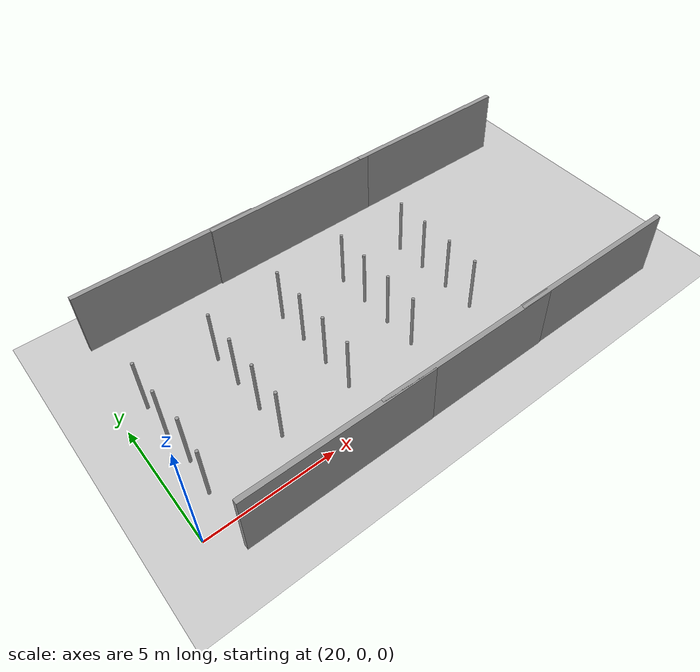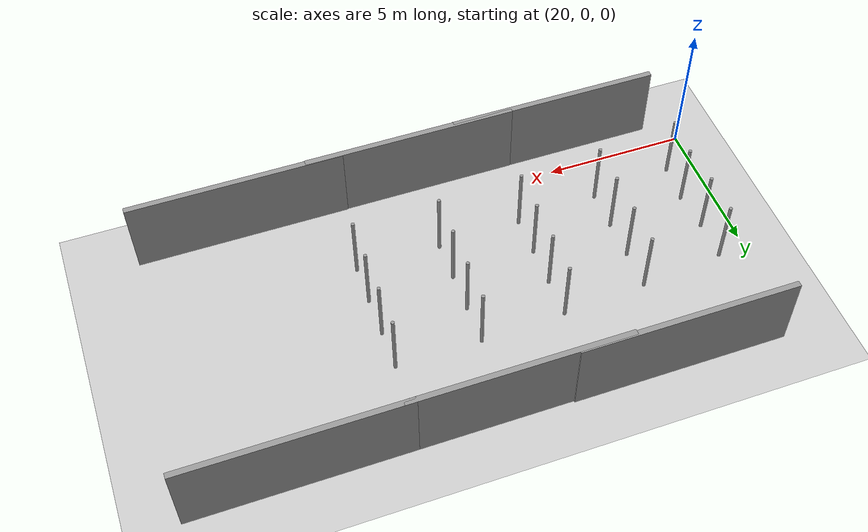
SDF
<sdf version="1.6">
 <world name="default">
  <model name="ground_plane">
   <static>1</static>
   <link name="link">
    <collision name="collision">
     <geometry><plane><normal>0 0 1</normal><size>100 100</size></plane></geometry>
     <surface><friction><ode><mu>100</mu><mu2>50</mu2></ode></friction></surface>
    </collision>
    <visual name="visual">
     <cast_shadows>0</cast_shadows>
     <geometry><plane><normal>0 0 1</normal><size>100 100</size></plane></geometry>
     <material>
      <script><uri>file://media/materials/scripts/gazebo.material</uri><name>Gazebo/Grey</name></script>
     </material>
    </visual>
   </link>
  </model>
  <model name="pole_13">
   <link name="link_0">
    <inertial>
     <mass>0.0364582</mass>
     <inertia>
      <ixx>0.00312124</ixx>
      <ixy>0</ixy>
      <ixz>0</ixz>
      <iyy>0.00312124</iyy>
      <iyz>0</iyz>
      <izz>0.00016615</izz>
     </inertia>
    </inertial>
    <visual name="visual">
     <geometry><cylinder><radius>0.06</radius><length>2.5</length></cylinder></geometry>
     <material>
      <lighting>1</lighting>
      <script><uri>file://media/materials/scripts/gazebo.material</uri><name>Gazebo/Grey</name></script>
      <ambient>0.3 0.3 0.3 1</ambient>
      <diffuse>0.7 0.7 0.7 1</diffuse>
      <specular>0.01 0.01 0.01 1</specular>
      <emissive>0 0 0 1</emissive>
      <shader type="vertex"><normal_map>__default__</normal_map></shader>
     </material>
    </visual>
    <collision name="collision">
     <geometry><cylinder><radius>0.06</radius><length>2.5</length></cylinder></geometry>
     <surface>
      <friction>
       <ode><mu>1</mu><mu2>1</mu2><fdir1>0 0 0</fdir1><slip1>0</slip1><slip2>0</slip2></ode>
       <torsional>
        <coefficient>1</coefficient>
        <patch_radius>0</patch_radius>
        <surface_radius>0</surface_radius>
        <use_patch_radius>1</use_patch_radius>
        <ode><slip>0</slip></ode>
       </torsional>
      </friction>
      <bounce><restitution_coefficient>0</restitution_coefficient><threshold>1e+06</threshold></bounce>
      <contact>
       <collide_without_contact>0</collide_without_contact>
       <collide_without_contact_bitmask>1</collide_without_contact_bitmask>
       <collide_bitmask>1</collide_bitmask>
       <ode>
        <soft_cfm>0</soft_cfm>
        <soft_erp>0.2</soft_erp>
        <kp>1e+13</kp>
        <kd>1</kd>
        <max_vel>0.01</max_vel>
        <min_depth>0</min_depth>
       </ode>
       <bullet>
        <split_impulse>1</split_impulse>
        <split_impulse_penetration_threshold>-0.01</split_impulse_penetration_threshold>
        <soft_cfm>0</soft_cfm>
        <soft_erp>0.2</soft_erp>
        <kp>1e+13</kp>
        <kd>1</kd>
       </bullet>
      </contact>
     </surface>
    </collision>
   </link>
   <static>0</static>
   <pose>21.0002 1.30174 1.25 -1e-06 1e-06 -0.05392</pose>
  </model>
  <model name="pole_16">
   <link name="link_0">
    <inertial>
     <mass>0.0364582</mass>
     <inertia>
      <ixx>0.00312124</ixx>
      <ixy>0</ixy>
      <ixz>0</ixz>
      <iyy>0.00312124</iyy>
      <iyz>0</iyz>
      <izz>0.00016615</izz>
     </inertia>
    </inertial>
    <visual name="visual">
     <geometry><cylinder><radius>0.06</radius><length>2.5</length></cylinder></geometry>
     <material>
      <lighting>1</lighting>
      <script><uri>file://media/materials/scripts/gazebo.material</uri><name>Gazebo/Grey</name></script>
      <ambient>0.3 0.3 0.3 1</ambient>
      <diffuse>0.7 0.7 0.7 1</diffuse>
      <specular>0.01 0.01 0.01 1</specular>
      <emissive>0 0 0 1</emissive>
      <shader type="vertex"><normal_map>__default__</normal_map></shader>
     </material>
    </visual>
    <collision name="collision">
     <geometry><cylinder><radius>0.06</radius><length>2.5</length></cylinder></geometry>
     <surface>
      <friction>
       <ode><mu>1</mu><mu2>1</mu2><fdir1>0 0 0</fdir1><slip1>0</slip1><slip2>0</slip2></ode>
       <torsional>
        <coefficient>1</coefficient>
        <patch_radius>0</patch_radius>
        <surface_radius>0</surface_radius>
        <use_patch_radius>1</use_patch_radius>
        <ode><slip>0</slip></ode>
       </torsional>
      </friction>
      <bounce><restitution_coefficient>0</restitution_coefficient><threshold>1e+06</threshold></bounce>
      <contact>
       <collide_without_contact>0</collide_without_contact>
       <collide_without_contact_bitmask>1</collide_without_contact_bitmask>
       <collide_bitmask>1</collide_bitmask>
       <ode>
        <soft_cfm>0</soft_cfm>
        <soft_erp>0.2</soft_erp>
        <kp>1e+13</kp>
        <kd>1</kd>
        <max_vel>0.01</max_vel>
        <min_depth>0</min_depth>
       </ode>
       <bullet>
        <split_impulse>1</split_impulse>
        <split_impulse_penetration_threshold>-0.01</split_impulse_penetration_threshold>
        <soft_cfm>0</soft_cfm>
        <soft_erp>0.2</soft_erp>
        <kp>1e+13</kp>
        <kd>1</kd>
       </bullet>
      </contact>
     </surface>
    </collision>
   </link>
   <static>0</static>
   <pose>21.1078 2.7014 1.24999 -1e-06 -1e-06 0.018883</pose>
  </model>
  <model name="pole_18">
   <link name="link_0">
    <inertial>
     <mass>0.0364582</mass>
     <inertia>
      <ixx>0.00312124</ixx>
      <ixy>0</ixy>
      <ixz>0</ixz>
      <iyy>0.00312124</iyy>
      <iyz>0</iyz>
      <izz>0.00016615</izz>
     </inertia>
    </inertial>
    <visual name="visual">
     <geometry><cylinder><radius>0.06</radius><length>2.5</length></cylinder></geometry>
     <material>
      <lighting>1</lighting>
      <script><uri>file://media/materials/scripts/gazebo.material</uri><name>Gazebo/Grey</name></script>
      <ambient>0.3 0.3 0.3 1</ambient>
      <diffuse>0.7 0.7 0.7 1</diffuse>
      <specular>0.01 0.01 0.01 1</specular>
      <emissive>0 0 0 1</emissive>
      <shader type="vertex"><normal_map>__default__</normal_map></shader>
     </material>
    </visual>
    <collision name="collision">
     <geometry><cylinder><radius>0.06</radius><length>2.5</length></cylinder></geometry>
     <surface>
      <friction>
       <ode><mu>1</mu><mu2>1</mu2><fdir1>0 0 0</fdir1><slip1>0</slip1><slip2>0</slip2></ode>
       <torsional>
        <coefficient>1</coefficient>
        <patch_radius>0</patch_radius>
        <surface_radius>0</surface_radius>
        <use_patch_radius>1</use_patch_radius>
        <ode><slip>0</slip></ode>
       </torsional>
      </friction>
      <bounce><restitution_coefficient>0</restitution_coefficient><threshold>1e+06</threshold></bounce>
      <contact>
       <collide_without_contact>0</collide_without_contact>
       <collide_without_contact_bitmask>1</collide_without_contact_bitmask>
       <collide_bitmask>1</collide_bitmask>
       <ode>
        <soft_cfm>0</soft_cfm>
        <soft_erp>0.2</soft_erp>
        <kp>1e+13</kp>
        <kd>1</kd>
        <max_vel>0.01</max_vel>
        <min_depth>0</min_depth>
       </ode>
       <bullet>
        <split_impulse>1</split_impulse>
        <split_impulse_penetration_threshold>-0.01</split_impulse_penetration_threshold>
        <soft_cfm>0</soft_cfm>
        <soft_erp>0.2</soft_erp>
        <kp>1e+13</kp>
        <kd>1</kd>
       </bullet>
      </contact>
     </surface>
    </collision>
   </link>
   <static>0</static>
   <pose>27.0002 1.80077 1.25 -1e-06 1e-06 -0.04813</pose>
  </model>
  <model name="pole_19">
   <link name="link_0">
    <inertial>
     <mass>0.0364582</mass>
     <inertia>
      <ixx>0.00312124</ixx>
      <ixy>0</ixy>
      <ixz>0</ixz>
      <iyy>0.00312124</iyy>
      <iyz>0</iyz>
      <izz>0.00016615</izz>
     </inertia>
    </inertial>
    <visual name="visual">
     <geometry><cylinder><radius>0.06</radius><length>2.5</length></cylinder></geometry>
     <material>
      <lighting>1</lighting>
      <script><uri>file://media/materials/scripts/gazebo.material</uri><name>Gazebo/Grey</name></script>
      <ambient>0.3 0.3 0.3 1</ambient>
      <diffuse>0.7 0.7 0.7 1</diffuse>
      <specular>0.01 0.01 0.01 1</specular>
      <emissive>0 0 0 1</emissive>
      <shader type="vertex"><normal_map>__default__</normal_map></shader>
     </material>
    </visual>
    <collision name="collision">
     <geometry><cylinder><radius>0.06</radius><length>2.5</length></cylinder></geometry>
     <surface>
      <friction>
       <ode><mu>1</mu><mu2>1</mu2><fdir1>0 0 0</fdir1><slip1>0</slip1><slip2>0</slip2></ode>
       <torsional>
        <coefficient>1</coefficient>
        <patch_radius>0</patch_radius>
        <surface_radius>0</surface_radius>
        <use_patch_radius>1</use_patch_radius>
        <ode><slip>0</slip></ode>
       </torsional>
      </friction>
      <bounce><restitution_coefficient>0</restitution_coefficient><threshold>1e+06</threshold></bounce>
      <contact>
       <collide_without_contact>0</collide_without_contact>
       <collide_without_contact_bitmask>1</collide_without_contact_bitmask>
       <collide_bitmask>1</collide_bitmask>
       <ode>
        <soft_cfm>0</soft_cfm>
        <soft_erp>0.2</soft_erp>
        <kp>1e+13</kp>
        <kd>1</kd>
        <max_vel>0.01</max_vel>
        <min_depth>0</min_depth>
       </ode>
       <bullet>
        <split_impulse>1</split_impulse>
        <split_impulse_penetration_threshold>-0.01</split_impulse_penetration_threshold>
        <soft_cfm>0</soft_cfm>
        <soft_erp>0.2</soft_erp>
        <kp>1e+13</kp>
        <kd>1</kd>
       </bullet>
      </contact>
     </surface>
    </collision>
   </link>
   <static>0</static>
   <pose>27.0002 3.20072 1.25 0 3e-06 -0.323036</pose>
  </model>
  <model name="pole_21">
   <link name="link_0">
    <inertial>
     <mass>0.0364582</mass>
     <inertia>
      <ixx>0.00312124</ixx>
      <ixy>0</ixy>
      <ixz>0</ixz>
      <iyy>0.00312124</iyy>
      <iyz>0</iyz>
      <izz>0.00016615</izz>
     </inertia>
    </inertial>
    <visual name="visual">
     <geometry><cylinder><radius>0.06</radius><length>2.5</length></cylinder></geometry>
     <material>
      <lighting>1</lighting>
      <script><uri>file://media/materials/scripts/gazebo.material</uri><name>Gazebo/Grey</name></script>
      <ambient>0.3 0.3 0.3 1</ambient>
      <diffuse>0.7 0.7 0.7 1</diffuse>
      <specular>0.01 0.01 0.01 1</specular>
      <emissive>0 0 0 1</emissive>
      <shader type="vertex"><normal_map>__default__</normal_map></shader>
     </material>
    </visual>
    <collision name="collision">
     <geometry><cylinder><radius>0.06</radius><length>2.5</length></cylinder></geometry>
     <surface>
      <friction>
       <ode><mu>1</mu><mu2>1</mu2><fdir1>0 0 0</fdir1><slip1>0</slip1><slip2>0</slip2></ode>
       <torsional>
        <coefficient>1</coefficient>
        <patch_radius>0</patch_radius>
        <surface_radius>0</surface_radius>
        <use_patch_radius>1</use_patch_radius>
        <ode><slip>0</slip></ode>
       </torsional>
      </friction>
      <bounce><restitution_coefficient>0</restitution_coefficient><threshold>1e+06</threshold></bounce>
      <contact>
       <collide_without_contact>0</collide_without_contact>
       <collide_without_contact_bitmask>1</collide_without_contact_bitmask>
       <collide_bitmask>1</collide_bitmask>
       <ode>
        <soft_cfm>0</soft_cfm>
        <soft_erp>0.2</soft_erp>
        <kp>1e+13</kp>
        <kd>1</kd>
        <max_vel>0.01</max_vel>
        <min_depth>0</min_depth>
       </ode>
       <bullet>
        <split_impulse>1</split_impulse>
        <split_impulse_penetration_threshold>-0.01</split_impulse_penetration_threshold>
        <soft_cfm>0</soft_cfm>
        <soft_erp>0.2</soft_erp>
        <kp>1e+13</kp>
        <kd>1</kd>
       </bullet>
      </contact>
     </surface>
    </collision>
   </link>
   <static>0</static>
   <pose>24.0002 3.00144 1.25 -1e-06 1e-06 -0.054998</pose>
  </model>
  <model name="pole_22">
   <link name="link_0">
    <inertial>
     <mass>0.0364582</mass>
     <inertia>
      <ixx>0.00312124</ixx>
      <ixy>0</ixy>
      <ixz>0</ixz>
      <iyy>0.00312124</iyy>
      <iyz>0</iyz>
      <izz>0.00016615</izz>
     </inertia>
    </inertial>
    <visual name="visual">
     <geometry><cylinder><radius>0.06</radius><length>2.5</length></cylinder></geometry>
     <material>
      <lighting>1</lighting>
      <script><uri>file://media/materials/scripts/gazebo.material</uri><name>Gazebo/Grey</name></script>
      <ambient>0.3 0.3 0.3 1</ambient>
      <diffuse>0.7 0.7 0.7 1</diffuse>
      <specular>0.01 0.01 0.01 1</specular>
      <emissive>0 0 0 1</emissive>
      <shader type="vertex"><normal_map>__default__</normal_map></shader>
     </material>
    </visual>
    <collision name="collision">
     <geometry><cylinder><radius>0.06</radius><length>2.5</length></cylinder></geometry>
     <surface>
      <friction>
       <ode><mu>1</mu><mu2>1</mu2><fdir1>0 0 0</fdir1><slip1>0</slip1><slip2>0</slip2></ode>
       <torsional>
        <coefficient>1</coefficient>
        <patch_radius>0</patch_radius>
        <surface_radius>0</surface_radius>
        <use_patch_radius>1</use_patch_radius>
        <ode><slip>0</slip></ode>
       </torsional>
      </friction>
      <bounce><restitution_coefficient>0</restitution_coefficient><threshold>1e+06</threshold></bounce>
      <contact>
       <collide_without_contact>0</collide_without_contact>
       <collide_without_contact_bitmask>1</collide_without_contact_bitmask>
       <collide_bitmask>1</collide_bitmask>
       <ode>
        <soft_cfm>0</soft_cfm>
        <soft_erp>0.2</soft_erp>
        <kp>1e+13</kp>
        <kd>1</kd>
        <max_vel>0.01</max_vel>
        <min_depth>0</min_depth>
       </ode>
       <bullet>
        <split_impulse>1</split_impulse>
        <split_impulse_penetration_threshold>-0.01</split_impulse_penetration_threshold>
        <soft_cfm>0</soft_cfm>
        <soft_erp>0.2</soft_erp>
        <kp>1e+13</kp>
        <kd>1</kd>
       </bullet>
      </contact>
     </surface>
    </collision>
   </link>
   <static>0</static>
   <pose>24.0002 1.60162 1.25 -1e-06 -1e-06 -0.05688</pose>
  </model>
  <model name="grey_wall_clone_0">
   <static>1</static>
   <link name="link">
    <pose>0 0 1.4 0 -0 0</pose>
    <collision name="collision"><geometry><box><size>7.5 0.2 2.8</size></box></geometry></collision>
    <visual name="visual">
     <cast_shadows>0</cast_shadows>
     <geometry><box><size>7.5 0.2 2.8</size></box></geometry>
     <material>
      <script>
       <uri>model://grey_wall/materials/scripts</uri>
       <uri>model://grey_wall/materials/textures</uri>
       <name>vrc/grey_wall</name>
      </script>
     </material>
    </visual>
   </link>
   <pose>24.29 9.20098 0 0 -0 0</pose>
  </model>
  <model name="grey_wall_clone_1_clone_clone">
   <static>1</static>
   <link name="link">
    <pose>0 0 1.4 0 -0 0</pose>
    <collision name="collision"><geometry><box><size>7.5 0.2 2.8</size></box></geometry></collision>
    <visual name="visual">
     <cast_shadows>0</cast_shadows>
     <geometry><box><size>7.5 0.2 2.8</size></box></geometry>
     <material>
      <script>
       <uri>model://grey_wall/materials/scripts</uri>
       <uri>model://grey_wall/materials/textures</uri>
       <name>vrc/grey_wall</name>
      </script>
     </material>
    </visual>
   </link>
   <pose>24.6991 -0.976544 0 0 -0 0</pose>
  </model>
  <model name="pole_25">
   <link name="link_0">
    <inertial>
     <mass>0.0364582</mass>
     <inertia>
      <ixx>0.00312124</ixx>
      <ixy>0</ixy>
      <ixz>0</ixz>
      <iyy>0.00312124</iyy>
      <iyz>0</iyz>
      <izz>0.00016615</izz>
     </inertia>
    </inertial>
    <visual name="visual">
     <geometry><cylinder><radius>0.06</radius><length>2.5</length></cylinder></geometry>
     <material>
      <lighting>1</lighting>
      <script><uri>file://media/materials/scripts/gazebo.material</uri><name>Gazebo/Grey</name></script>
      <ambient>0.3 0.3 0.3 1</ambient>
      <diffuse>0.7 0.7 0.7 1</diffuse>
      <specular>0.01 0.01 0.01 1</specular>
      <emissive>0 0 0 1</emissive>
      <shader type="vertex"><normal_map>__default__</normal_map></shader>
     </material>
    </visual>
    <collision name="collision">
     <geometry><cylinder><radius>0.06</radius><length>2.5</length></cylinder></geometry>
     <surface>
      <friction>
       <ode><mu>1</mu><mu2>1</mu2><fdir1>0 0 0</fdir1><slip1>0</slip1><slip2>0</slip2></ode>
       <torsional>
        <coefficient>1</coefficient>
        <patch_radius>0</patch_radius>
        <surface_radius>0</surface_radius>
        <use_patch_radius>1</use_patch_radius>
        <ode><slip>0</slip></ode>
       </torsional>
      </friction>
      <bounce><restitution_coefficient>0</restitution_coefficient><threshold>1e+06</threshold></bounce>
      <contact>
       <collide_without_contact>0</collide_without_contact>
       <collide_without_contact_bitmask>1</collide_without_contact_bitmask>
       <collide_bitmask>1</collide_bitmask>
       <ode>
        <soft_cfm>0</soft_cfm>
        <soft_erp>0.2</soft_erp>
        <kp>1e+13</kp>
        <kd>1</kd>
        <max_vel>0.01</max_vel>
        <min_depth>0</min_depth>
       </ode>
       <bullet>
        <split_impulse>1</split_impulse>
        <split_impulse_penetration_threshold>-0.01</split_impulse_penetration_threshold>
        <soft_cfm>0</soft_cfm>
        <soft_erp>0.2</soft_erp>
        <kp>1e+13</kp>
        <kd>1</kd>
       </bullet>
      </contact>
     </surface>
    </collision>
   </link>
   <static>0</static>
   <pose>21.0001 4.10078 1.24999 -0 1e-06 -0.017377</pose>
  </model>
  <model name="pole_26">
   <link name="link_0">
    <inertial>
     <mass>0.0364582</mass>
     <inertia>
      <ixx>0.00312124</ixx>
      <ixy>0</ixy>
      <ixz>0</ixz>
      <iyy>0.00312124</iyy>
      <iyz>0</iyz>
      <izz>0.00016615</izz>
     </inertia>
    </inertial>
    <visual name="visual">
     <geometry><cylinder><radius>0.06</radius><length>2.5</length></cylinder></geometry>
     <material>
      <lighting>1</lighting>
      <script><uri>file://media/materials/scripts/gazebo.material</uri><name>Gazebo/Grey</name></script>
      <ambient>0.3 0.3 0.3 1</ambient>
      <diffuse>0.7 0.7 0.7 1</diffuse>
      <specular>0.01 0.01 0.01 1</specular>
      <emissive>0 0 0 1</emissive>
      <shader type="vertex"><normal_map>__default__</normal_map></shader>
     </material>
    </visual>
    <collision name="collision">
     <geometry><cylinder><radius>0.06</radius><length>2.5</length></cylinder></geometry>
     <surface>
      <friction>
       <ode><mu>1</mu><mu2>1</mu2><fdir1>0 0 0</fdir1><slip1>0</slip1><slip2>0</slip2></ode>
       <torsional>
        <coefficient>1</coefficient>
        <patch_radius>0</patch_radius>
        <surface_radius>0</surface_radius>
        <use_patch_radius>1</use_patch_radius>
        <ode><slip>0</slip></ode>
       </torsional>
      </friction>
      <bounce><restitution_coefficient>0</restitution_coefficient><threshold>1e+06</threshold></bounce>
      <contact>
       <collide_without_contact>0</collide_without_contact>
       <collide_without_contact_bitmask>1</collide_without_contact_bitmask>
       <collide_bitmask>1</collide_bitmask>
       <ode>
        <soft_cfm>0</soft_cfm>
        <soft_erp>0.2</soft_erp>
        <kp>1e+13</kp>
        <kd>1</kd>
        <max_vel>0.01</max_vel>
        <min_depth>0</min_depth>
       </ode>
       <bullet>
        <split_impulse>1</split_impulse>
        <split_impulse_penetration_threshold>-0.01</split_impulse_penetration_threshold>
        <soft_cfm>0</soft_cfm>
        <soft_erp>0.2</soft_erp>
        <kp>1e+13</kp>
        <kd>1</kd>
       </bullet>
      </contact>
     </surface>
    </collision>
   </link>
   <static>0</static>
   <pose>21.0001 5.50083 1.24999 -1e-06 1e-06 -0.019706</pose>
  </model>
  <model name="pole_27">
   <link name="link_0">
    <inertial>
     <mass>0.0364582</mass>
     <inertia>
      <ixx>0.00312124</ixx>
      <ixy>0</ixy>
      <ixz>0</ixz>
      <iyy>0.00312124</iyy>
      <iyz>0</iyz>
      <izz>0.00016615</izz>
     </inertia>
    </inertial>
    <visual name="visual">
     <geometry><cylinder><radius>0.06</radius><length>2.5</length></cylinder></geometry>
     <material>
      <lighting>1</lighting>
      <script><uri>file://media/materials/scripts/gazebo.material</uri><name>Gazebo/Grey</name></script>
      <ambient>0.3 0.3 0.3 1</ambient>
      <diffuse>0.7 0.7 0.7 1</diffuse>
      <specular>0.01 0.01 0.01 1</specular>
      <emissive>0 0 0 1</emissive>
      <shader type="vertex"><normal_map>__default__</normal_map></shader>
     </material>
    </visual>
    <collision name="collision">
     <geometry><cylinder><radius>0.06</radius><length>2.5</length></cylinder></geometry>
     <surface>
      <friction>
       <ode><mu>1</mu><mu2>1</mu2><fdir1>0 0 0</fdir1><slip1>0</slip1><slip2>0</slip2></ode>
       <torsional>
        <coefficient>1</coefficient>
        <patch_radius>0</patch_radius>
        <surface_radius>0</surface_radius>
        <use_patch_radius>1</use_patch_radius>
        <ode><slip>0</slip></ode>
       </torsional>
      </friction>
      <bounce><restitution_coefficient>0</restitution_coefficient><threshold>1e+06</threshold></bounce>
      <contact>
       <collide_without_contact>0</collide_without_contact>
       <collide_without_contact_bitmask>1</collide_without_contact_bitmask>
       <collide_bitmask>1</collide_bitmask>
       <ode>
        <soft_cfm>0</soft_cfm>
        <soft_erp>0.2</soft_erp>
        <kp>1e+13</kp>
        <kd>1</kd>
        <max_vel>0.01</max_vel>
        <min_depth>0</min_depth>
       </ode>
       <bullet>
        <split_impulse>1</split_impulse>
        <split_impulse_penetration_threshold>-0.01</split_impulse_penetration_threshold>
        <soft_cfm>0</soft_cfm>
        <soft_erp>0.2</soft_erp>
        <kp>1e+13</kp>
        <kd>1</kd>
       </bullet>
      </contact>
     </surface>
    </collision>
   </link>
   <static>0</static>
   <pose>24.0001 4.40088 1.24999 0 1e-06 -0.015416</pose>
  </model>
  <model name="pole_28">
   <link name="link_0">
    <inertial>
     <mass>0.0364582</mass>
     <inertia>
      <ixx>0.00312124</ixx>
      <ixy>0</ixy>
      <ixz>0</ixz>
      <iyy>0.00312124</iyy>
      <iyz>0</iyz>
      <izz>0.00016615</izz>
     </inertia>
    </inertial>
    <visual name="visual">
     <geometry><cylinder><radius>0.06</radius><length>2.5</length></cylinder></geometry>
     <material>
      <lighting>1</lighting>
      <script><uri>file://media/materials/scripts/gazebo.material</uri><name>Gazebo/Grey</name></script>
      <ambient>0.3 0.3 0.3 1</ambient>
      <diffuse>0.7 0.7 0.7 1</diffuse>
      <specular>0.01 0.01 0.01 1</specular>
      <emissive>0 0 0 1</emissive>
      <shader type="vertex"><normal_map>__default__</normal_map></shader>
     </material>
    </visual>
    <collision name="collision">
     <geometry><cylinder><radius>0.06</radius><length>2.5</length></cylinder></geometry>
     <surface>
      <friction>
       <ode><mu>1</mu><mu2>1</mu2><fdir1>0 0 0</fdir1><slip1>0</slip1><slip2>0</slip2></ode>
       <torsional>
        <coefficient>1</coefficient>
        <patch_radius>0</patch_radius>
        <surface_radius>0</surface_radius>
        <use_patch_radius>1</use_patch_radius>
        <ode><slip>0</slip></ode>
       </torsional>
      </friction>
      <bounce><restitution_coefficient>0</restitution_coefficient><threshold>1e+06</threshold></bounce>
      <contact>
       <collide_without_contact>0</collide_without_contact>
       <collide_without_contact_bitmask>1</collide_without_contact_bitmask>
       <collide_bitmask>1</collide_bitmask>
       <ode>
        <soft_cfm>0</soft_cfm>
        <soft_erp>0.2</soft_erp>
        <kp>1e+13</kp>
        <kd>1</kd>
        <max_vel>0.01</max_vel>
        <min_depth>0</min_depth>
       </ode>
       <bullet>
        <split_impulse>1</split_impulse>
        <split_impulse_penetration_threshold>-0.01</split_impulse_penetration_threshold>
        <soft_cfm>0</soft_cfm>
        <soft_erp>0.2</soft_erp>
        <kp>1e+13</kp>
        <kd>1</kd>
       </bullet>
      </contact>
     </surface>
    </collision>
   </link>
   <static>0</static>
   <pose>24.0001 5.80077 1.24999 0 -1e-06 -0.011562</pose>
  </model>
  <model name="pole_29">
   <link name="link_0">
    <inertial>
     <mass>0.0364582</mass>
     <inertia>
      <ixx>0.00312124</ixx>
      <ixy>0</ixy>
      <ixz>0</ixz>
      <iyy>0.00312124</iyy>
      <iyz>0</iyz>
      <izz>0.00016615</izz>
     </inertia>
    </inertial>
    <visual name="visual">
     <geometry><cylinder><radius>0.06</radius><length>2.5</length></cylinder></geometry>
     <material>
      <lighting>1</lighting>
      <script><uri>file://media/materials/scripts/gazebo.material</uri><name>Gazebo/Grey</name></script>
      <ambient>0.3 0.3 0.3 1</ambient>
      <diffuse>0.7 0.7 0.7 1</diffuse>
      <specular>0.01 0.01 0.01 1</specular>
      <emissive>0 0 0 1</emissive>
      <shader type="vertex"><normal_map>__default__</normal_map></shader>
     </material>
    </visual>
    <collision name="collision">
     <geometry><cylinder><radius>0.06</radius><length>2.5</length></cylinder></geometry>
     <surface>
      <friction>
       <ode><mu>1</mu><mu2>1</mu2><fdir1>0 0 0</fdir1><slip1>0</slip1><slip2>0</slip2></ode>
       <torsional>
        <coefficient>1</coefficient>
        <patch_radius>0</patch_radius>
        <surface_radius>0</surface_radius>
        <use_patch_radius>1</use_patch_radius>
        <ode><slip>0</slip></ode>
       </torsional>
      </friction>
      <bounce><restitution_coefficient>0</restitution_coefficient><threshold>1e+06</threshold></bounce>
      <contact>
       <collide_without_contact>0</collide_without_contact>
       <collide_without_contact_bitmask>1</collide_without_contact_bitmask>
       <collide_bitmask>1</collide_bitmask>
       <ode>
        <soft_cfm>0</soft_cfm>
        <soft_erp>0.2</soft_erp>
        <kp>1e+13</kp>
        <kd>1</kd>
        <max_vel>0.01</max_vel>
        <min_depth>0</min_depth>
       </ode>
       <bullet>
        <split_impulse>1</split_impulse>
        <split_impulse_penetration_threshold>-0.01</split_impulse_penetration_threshold>
        <soft_cfm>0</soft_cfm>
        <soft_erp>0.2</soft_erp>
        <kp>1e+13</kp>
        <kd>1</kd>
       </bullet>
      </contact>
     </surface>
    </collision>
   </link>
   <static>0</static>
   <pose>27.0001 4.60055 1.24999 -1e-06 0 -0.013151</pose>
  </model>
  <model name="pole_30">
   <link name="link_0">
    <inertial>
     <mass>0.0364582</mass>
     <inertia>
      <ixx>0.00312124</ixx>
      <ixy>0</ixy>
      <ixz>0</ixz>
      <iyy>0.00312124</iyy>
      <iyz>0</iyz>
      <izz>0.00016615</izz>
     </inertia>
    </inertial>
    <visual name="visual">
     <geometry><cylinder><radius>0.06</radius><length>2.5</length></cylinder></geometry>
     <material>
      <lighting>1</lighting>
      <script><uri>file://media/materials/scripts/gazebo.material</uri><name>Gazebo/Grey</name></script>
      <ambient>0.3 0.3 0.3 1</ambient>
      <diffuse>0.7 0.7 0.7 1</diffuse>
      <specular>0.01 0.01 0.01 1</specular>
      <emissive>0 0 0 1</emissive>
      <shader type="vertex"><normal_map>__default__</normal_map></shader>
     </material>
    </visual>
    <collision name="collision">
     <geometry><cylinder><radius>0.06</radius><length>2.5</length></cylinder></geometry>
     <surface>
      <friction>
       <ode><mu>1</mu><mu2>1</mu2><fdir1>0 0 0</fdir1><slip1>0</slip1><slip2>0</slip2></ode>
       <torsional>
        <coefficient>1</coefficient>
        <patch_radius>0</patch_radius>
        <surface_radius>0</surface_radius>
        <use_patch_radius>1</use_patch_radius>
        <ode><slip>0</slip></ode>
       </torsional>
      </friction>
      <bounce><restitution_coefficient>0</restitution_coefficient><threshold>1e+06</threshold></bounce>
      <contact>
       <collide_without_contact>0</collide_without_contact>
       <collide_without_contact_bitmask>1</collide_without_contact_bitmask>
       <collide_bitmask>1</collide_bitmask>
       <ode>
        <soft_cfm>0</soft_cfm>
        <soft_erp>0.2</soft_erp>
        <kp>1e+13</kp>
        <kd>1</kd>
        <max_vel>0.01</max_vel>
        <min_depth>0</min_depth>
       </ode>
       <bullet>
        <split_impulse>1</split_impulse>
        <split_impulse_penetration_threshold>-0.01</split_impulse_penetration_threshold>
        <soft_cfm>0</soft_cfm>
        <soft_erp>0.2</soft_erp>
        <kp>1e+13</kp>
        <kd>1</kd>
       </bullet>
      </contact>
     </surface>
    </collision>
   </link>
   <static>0</static>
   <pose>27.0001 6.00062 1.25 -0 1e-06 -0.012676</pose>
  </model>
  <model name="pole_31">
   <link name="link_0">
    <inertial>
     <mass>0.0364582</mass>
     <inertia>
      <ixx>0.00312124</ixx>
      <ixy>0</ixy>
      <ixz>0</ixz>
      <iyy>0.00312124</iyy>
      <iyz>0</iyz>
      <izz>0.00016615</izz>
     </inertia>
    </inertial>
    <visual name="visual">
     <geometry><cylinder><radius>0.06</radius><length>2.5</length></cylinder></geometry>
     <material>
      <lighting>1</lighting>
      <script><uri>file://media/materials/scripts/gazebo.material</uri><name>Gazebo/Grey</name></script>
      <ambient>0.3 0.3 0.3 1</ambient>
      <diffuse>0.7 0.7 0.7 1</diffuse>
      <specular>0.01 0.01 0.01 1</specular>
      <emissive>0 0 0 1</emissive>
      <shader type="vertex"><normal_map>__default__</normal_map></shader>
     </material>
    </visual>
    <collision name="collision">
     <geometry><cylinder><radius>0.06</radius><length>2.5</length></cylinder></geometry>
     <surface>
      <friction>
       <ode><mu>1</mu><mu2>1</mu2><fdir1>0 0 0</fdir1><slip1>0</slip1><slip2>0</slip2></ode>
       <torsional>
        <coefficient>1</coefficient>
        <patch_radius>0</patch_radius>
        <surface_radius>0</surface_radius>
        <use_patch_radius>1</use_patch_radius>
        <ode><slip>0</slip></ode>
       </torsional>
      </friction>
      <bounce><restitution_coefficient>0</restitution_coefficient><threshold>1e+06</threshold></bounce>
      <contact>
       <collide_without_contact>0</collide_without_contact>
       <collide_without_contact_bitmask>1</collide_without_contact_bitmask>
       <collide_bitmask>1</collide_bitmask>
       <ode>
        <soft_cfm>0</soft_cfm>
        <soft_erp>0.2</soft_erp>
        <kp>1e+13</kp>
        <kd>1</kd>
        <max_vel>0.01</max_vel>
        <min_depth>0</min_depth>
       </ode>
       <bullet>
        <split_impulse>1</split_impulse>
        <split_impulse_penetration_threshold>-0.01</split_impulse_penetration_threshold>
        <soft_cfm>0</soft_cfm>
        <soft_erp>0.2</soft_erp>
        <kp>1e+13</kp>
        <kd>1</kd>
       </bullet>
      </contact>
     </surface>
    </collision>
   </link>
   <static>0</static>
   <pose>30.0001 6.10043 1.25 1e-06 -2e-06 -0.005587</pose>
  </model>
  <model name="pole_32">
   <link name="link_0">
    <inertial>
     <mass>0.0364582</mass>
     <inertia>
      <ixx>0.00312124</ixx>
      <ixy>0</ixy>
      <ixz>0</ixz>
      <iyy>0.00312124</iyy>
      <iyz>0</iyz>
      <izz>0.00016615</izz>
     </inertia>
    </inertial>
    <visual name="visual">
     <geometry><cylinder><radius>0.06</radius><length>2.5</length></cylinder></geometry>
     <material>
      <lighting>1</lighting>
      <script><uri>file://media/materials/scripts/gazebo.material</uri><name>Gazebo/Grey</name></script>
      <ambient>0.3 0.3 0.3 1</ambient>
      <diffuse>0.7 0.7 0.7 1</diffuse>
      <specular>0.01 0.01 0.01 1</specular>
      <emissive>0 0 0 1</emissive>
      <shader type="vertex"><normal_map>__default__</normal_map></shader>
     </material>
    </visual>
    <collision name="collision">
     <geometry><cylinder><radius>0.06</radius><length>2.5</length></cylinder></geometry>
     <surface>
      <friction>
       <ode><mu>1</mu><mu2>1</mu2><fdir1>0 0 0</fdir1><slip1>0</slip1><slip2>0</slip2></ode>
       <torsional>
        <coefficient>1</coefficient>
        <patch_radius>0</patch_radius>
        <surface_radius>0</surface_radius>
        <use_patch_radius>1</use_patch_radius>
        <ode><slip>0</slip></ode>
       </torsional>
      </friction>
      <bounce><restitution_coefficient>0</restitution_coefficient><threshold>1e+06</threshold></bounce>
      <contact>
       <collide_without_contact>0</collide_without_contact>
       <collide_without_contact_bitmask>1</collide_without_contact_bitmask>
       <collide_bitmask>1</collide_bitmask>
       <ode>
        <soft_cfm>0</soft_cfm>
        <soft_erp>0.2</soft_erp>
        <kp>1e+13</kp>
        <kd>1</kd>
        <max_vel>0.01</max_vel>
        <min_depth>0</min_depth>
       </ode>
       <bullet>
        <split_impulse>1</split_impulse>
        <split_impulse_penetration_threshold>-0.01</split_impulse_penetration_threshold>
        <soft_cfm>0</soft_cfm>
        <soft_erp>0.2</soft_erp>
        <kp>1e+13</kp>
        <kd>1</kd>
       </bullet>
      </contact>
     </surface>
    </collision>
   </link>
   <static>0</static>
   <pose>30.0001 4.70057 1.25 -1e-06 -1e-06 -0.007774</pose>
  </model>
  <model name="pole_33">
   <link name="link_0">
    <inertial>
     <mass>0.0364582</mass>
     <inertia>
      <ixx>0.00312124</ixx>
      <ixy>0</ixy>
      <ixz>0</ixz>
      <iyy>0.00312124</iyy>
      <iyz>0</iyz>
      <izz>0.00016615</izz>
     </inertia>
    </inertial>
    <visual name="visual">
     <geometry><cylinder><radius>0.06</radius><length>2.5</length></cylinder></geometry>
     <material>
      <lighting>1</lighting>
      <script><uri>file://media/materials/scripts/gazebo.material</uri><name>Gazebo/Grey</name></script>
      <ambient>0.3 0.3 0.3 1</ambient>
      <diffuse>0.7 0.7 0.7 1</diffuse>
      <specular>0.01 0.01 0.01 1</specular>
      <emissive>0 0 0 1</emissive>
      <shader type="vertex"><normal_map>__default__</normal_map></shader>
     </material>
    </visual>
    <collision name="collision">
     <geometry><cylinder><radius>0.06</radius><length>2.5</length></cylinder></geometry>
     <surface>
      <friction>
       <ode><mu>1</mu><mu2>1</mu2><fdir1>0 0 0</fdir1><slip1>0</slip1><slip2>0</slip2></ode>
       <torsional>
        <coefficient>1</coefficient>
        <patch_radius>0</patch_radius>
        <surface_radius>0</surface_radius>
        <use_patch_radius>1</use_patch_radius>
        <ode><slip>0</slip></ode>
       </torsional>
      </friction>
      <bounce><restitution_coefficient>0</restitution_coefficient><threshold>1e+06</threshold></bounce>
      <contact>
       <collide_without_contact>0</collide_without_contact>
       <collide_without_contact_bitmask>1</collide_without_contact_bitmask>
       <collide_bitmask>1</collide_bitmask>
       <ode>
        <soft_cfm>0</soft_cfm>
        <soft_erp>0.2</soft_erp>
        <kp>1e+13</kp>
        <kd>1</kd>
        <max_vel>0.01</max_vel>
        <min_depth>0</min_depth>
       </ode>
       <bullet>
        <split_impulse>1</split_impulse>
        <split_impulse_penetration_threshold>-0.01</split_impulse_penetration_threshold>
        <soft_cfm>0</soft_cfm>
        <soft_erp>0.2</soft_erp>
        <kp>1e+13</kp>
        <kd>1</kd>
       </bullet>
      </contact>
     </surface>
    </collision>
   </link>
   <static>0</static>
   <pose>30.0002 3.30071 1.24999 -1e-06 1e-06 0.037453</pose>
  </model>
  <model name="pole_34">
   <link name="link_0">
    <inertial>
     <mass>0.0364582</mass>
     <inertia>
      <ixx>0.00312124</ixx>
      <ixy>0</ixy>
      <ixz>0</ixz>
      <iyy>0.00312124</iyy>
      <iyz>0</iyz>
      <izz>0.00016615</izz>
     </inertia>
    </inertial>
    <visual name="visual">
     <geometry><cylinder><radius>0.06</radius><length>2.5</length></cylinder></geometry>
     <material>
      <lighting>1</lighting>
      <script><uri>file://media/materials/scripts/gazebo.material</uri><name>Gazebo/Grey</name></script>
      <ambient>0.3 0.3 0.3 1</ambient>
      <diffuse>0.7 0.7 0.7 1</diffuse>
      <specular>0.01 0.01 0.01 1</specular>
      <emissive>0 0 0 1</emissive>
      <shader type="vertex"><normal_map>__default__</normal_map></shader>
     </material>
    </visual>
    <collision name="collision">
     <geometry><cylinder><radius>0.06</radius><length>2.5</length></cylinder></geometry>
     <surface>
      <friction>
       <ode><mu>1</mu><mu2>1</mu2><fdir1>0 0 0</fdir1><slip1>0</slip1><slip2>0</slip2></ode>
       <torsional>
        <coefficient>1</coefficient>
        <patch_radius>0</patch_radius>
        <surface_radius>0</surface_radius>
        <use_patch_radius>1</use_patch_radius>
        <ode><slip>0</slip></ode>
       </torsional>
      </friction>
      <bounce><restitution_coefficient>0</restitution_coefficient><threshold>1e+06</threshold></bounce>
      <contact>
       <collide_without_contact>0</collide_without_contact>
       <collide_without_contact_bitmask>1</collide_without_contact_bitmask>
       <collide_bitmask>1</collide_bitmask>
       <ode>
        <soft_cfm>0</soft_cfm>
        <soft_erp>0.2</soft_erp>
        <kp>1e+13</kp>
        <kd>1</kd>
        <max_vel>0.01</max_vel>
        <min_depth>0</min_depth>
       </ode>
       <bullet>
        <split_impulse>1</split_impulse>
        <split_impulse_penetration_threshold>-0.01</split_impulse_penetration_threshold>
        <soft_cfm>0</soft_cfm>
        <soft_erp>0.2</soft_erp>
        <kp>1e+13</kp>
        <kd>1</kd>
       </bullet>
      </contact>
     </surface>
    </collision>
   </link>
   <static>0</static>
   <pose>30 1.90036 1.24999 -1e-06 1e-06 -0.022081</pose>
  </model>
  <model name="pole_35">
   <link name="link_0">
    <inertial>
     <mass>0.0364582</mass>
     <inertia>
      <ixx>0.00312124</ixx>
      <ixy>0</ixy>
      <ixz>0</ixz>
      <iyy>0.00312124</iyy>
      <iyz>0</iyz>
      <izz>0.00016615</izz>
     </inertia>
    </inertial>
    <visual name="visual">
     <geometry><cylinder><radius>0.06</radius><length>2.5</length></cylinder></geometry>
     <material>
      <lighting>1</lighting>
      <script><uri>file://media/materials/scripts/gazebo.material</uri><name>Gazebo/Grey</name></script>
      <ambient>0.3 0.3 0.3 1</ambient>
      <diffuse>0.7 0.7 0.7 1</diffuse>
      <specular>0.01 0.01 0.01 1</specular>
      <emissive>0 0 0 1</emissive>
      <shader type="vertex"><normal_map>__default__</normal_map></shader>
     </material>
    </visual>
    <collision name="collision">
     <geometry><cylinder><radius>0.06</radius><length>2.5</length></cylinder></geometry>
     <surface>
      <friction>
       <ode><mu>1</mu><mu2>1</mu2><fdir1>0 0 0</fdir1><slip1>0</slip1><slip2>0</slip2></ode>
       <torsional>
        <coefficient>1</coefficient>
        <patch_radius>0</patch_radius>
        <surface_radius>0</surface_radius>
        <use_patch_radius>1</use_patch_radius>
        <ode><slip>0</slip></ode>
       </torsional>
      </friction>
      <bounce><restitution_coefficient>0</restitution_coefficient><threshold>1e+06</threshold></bounce>
      <contact>
       <collide_without_contact>0</collide_without_contact>
       <collide_without_contact_bitmask>1</collide_without_contact_bitmask>
       <collide_bitmask>1</collide_bitmask>
       <ode>
        <soft_cfm>0</soft_cfm>
        <soft_erp>0.2</soft_erp>
        <kp>1e+13</kp>
        <kd>1</kd>
        <max_vel>0.01</max_vel>
        <min_depth>0</min_depth>
       </ode>
       <bullet>
        <split_impulse>1</split_impulse>
        <split_impulse_penetration_threshold>-0.01</split_impulse_penetration_threshold>
        <soft_cfm>0</soft_cfm>
        <soft_erp>0.2</soft_erp>
        <kp>1e+13</kp>
        <kd>1</kd>
       </bullet>
      </contact>
     </surface>
    </collision>
   </link>
   <static>0</static>
   <pose>32.99 6.10027 1.24999 -1e-06 -2e-06 -0.006825</pose>
  </model>
  <model name="pole_36">
   <link name="link_0">
    <inertial>
     <mass>0.0364582</mass>
     <inertia>
      <ixx>0.00312124</ixx>
      <ixy>0</ixy>
      <ixz>0</ixz>
      <iyy>0.00312124</iyy>
      <iyz>0</iyz>
      <izz>0.00016615</izz>
     </inertia>
    </inertial>
    <visual name="visual">
     <geometry><cylinder><radius>0.06</radius><length>2.5</length></cylinder></geometry>
     <material>
      <lighting>1</lighting>
      <script><uri>file://media/materials/scripts/gazebo.material</uri><name>Gazebo/Grey</name></script>
      <ambient>0.3 0.3 0.3 1</ambient>
      <diffuse>0.7 0.7 0.7 1</diffuse>
      <specular>0.01 0.01 0.01 1</specular>
      <emissive>0 0 0 1</emissive>
      <shader type="vertex"><normal_map>__default__</normal_map></shader>
     </material>
    </visual>
    <collision name="collision">
     <geometry><cylinder><radius>0.06</radius><length>2.5</length></cylinder></geometry>
     <surface>
      <friction>
       <ode><mu>1</mu><mu2>1</mu2><fdir1>0 0 0</fdir1><slip1>0</slip1><slip2>0</slip2></ode>
       <torsional>
        <coefficient>1</coefficient>
        <patch_radius>0</patch_radius>
        <surface_radius>0</surface_radius>
        <use_patch_radius>1</use_patch_radius>
        <ode><slip>0</slip></ode>
       </torsional>
      </friction>
      <bounce><restitution_coefficient>0</restitution_coefficient><threshold>1e+06</threshold></bounce>
      <contact>
       <collide_without_contact>0</collide_without_contact>
       <collide_without_contact_bitmask>1</collide_without_contact_bitmask>
       <collide_bitmask>1</collide_bitmask>
       <ode>
        <soft_cfm>0</soft_cfm>
        <soft_erp>0.2</soft_erp>
        <kp>1e+13</kp>
        <kd>1</kd>
        <max_vel>0.01</max_vel>
        <min_depth>0</min_depth>
       </ode>
       <bullet>
        <split_impulse>1</split_impulse>
        <split_impulse_penetration_threshold>-0.01</split_impulse_penetration_threshold>
        <soft_cfm>0</soft_cfm>
        <soft_erp>0.2</soft_erp>
        <kp>1e+13</kp>
        <kd>1</kd>
       </bullet>
      </contact>
     </surface>
    </collision>
   </link>
   <static>0</static>
   <pose>33 4.70035 1.24999 -1e-06 -0 -0.004232</pose>
  </model>
  <model name="pole_37">
   <link name="link_0">
    <inertial>
     <mass>0.0364582</mass>
     <inertia>
      <ixx>0.00312124</ixx>
      <ixy>0</ixy>
      <ixz>0</ixz>
      <iyy>0.00312124</iyy>
      <iyz>0</iyz>
      <izz>0.00016615</izz>
     </inertia>
    </inertial>
    <visual name="visual">
     <geometry><cylinder><radius>0.06</radius><length>2.5</length></cylinder></geometry>
     <material>
      <lighting>1</lighting>
      <script><uri>file://media/materials/scripts/gazebo.material</uri><name>Gazebo/Grey</name></script>
      <ambient>0.3 0.3 0.3 1</ambient>
      <diffuse>0.7 0.7 0.7 1</diffuse>
      <specular>0.01 0.01 0.01 1</specular>
      <emissive>0 0 0 1</emissive>
      <shader type="vertex"><normal_map>__default__</normal_map></shader>
     </material>
    </visual>
    <collision name="collision">
     <geometry><cylinder><radius>0.06</radius><length>2.5</length></cylinder></geometry>
     <surface>
      <friction>
       <ode><mu>1</mu><mu2>1</mu2><fdir1>0 0 0</fdir1><slip1>0</slip1><slip2>0</slip2></ode>
       <torsional>
        <coefficient>1</coefficient>
        <patch_radius>0</patch_radius>
        <surface_radius>0</surface_radius>
        <use_patch_radius>1</use_patch_radius>
        <ode><slip>0</slip></ode>
       </torsional>
      </friction>
      <bounce><restitution_coefficient>0</restitution_coefficient><threshold>1e+06</threshold></bounce>
      <contact>
       <collide_without_contact>0</collide_without_contact>
       <collide_without_contact_bitmask>1</collide_without_contact_bitmask>
       <collide_bitmask>1</collide_bitmask>
       <ode>
        <soft_cfm>0</soft_cfm>
        <soft_erp>0.2</soft_erp>
        <kp>1e+13</kp>
        <kd>1</kd>
        <max_vel>0.01</max_vel>
        <min_depth>0</min_depth>
       </ode>
       <bullet>
        <split_impulse>1</split_impulse>
        <split_impulse_penetration_threshold>-0.01</split_impulse_penetration_threshold>
        <soft_cfm>0</soft_cfm>
        <soft_erp>0.2</soft_erp>
        <kp>1e+13</kp>
        <kd>1</kd>
       </bullet>
      </contact>
     </surface>
    </collision>
   </link>
   <static>0</static>
   <pose>33.0086 3.29601 1.24998 -0.000113 0.000191 0.214334</pose>
  </model>
  <model name="pole_38">
   <link name="link_0">
    <inertial>
     <mass>0.0364582</mass>
     <inertia>
      <ixx>0.00312124</ixx>
      <ixy>0</ixy>
      <ixz>0</ixz>
      <iyy>0.00312124</iyy>
      <iyz>0</iyz>
      <izz>0.00016615</izz>
     </inertia>
    </inertial>
    <visual name="visual">
     <geometry><cylinder><radius>0.06</radius><length>2.5</length></cylinder></geometry>
     <material>
      <lighting>1</lighting>
      <script><uri>file://media/materials/scripts/gazebo.material</uri><name>Gazebo/Grey</name></script>
      <ambient>0.3 0.3 0.3 1</ambient>
      <diffuse>0.7 0.7 0.7 1</diffuse>
      <specular>0.01 0.01 0.01 1</specular>
      <emissive>0 0 0 1</emissive>
      <shader type="vertex"><normal_map>__default__</normal_map></shader>
     </material>
    </visual>
    <collision name="collision">
     <geometry><cylinder><radius>0.06</radius><length>2.5</length></cylinder></geometry>
     <surface>
      <friction>
       <ode><mu>1</mu><mu2>1</mu2><fdir1>0 0 0</fdir1><slip1>0</slip1><slip2>0</slip2></ode>
       <torsional>
        <coefficient>1</coefficient>
        <patch_radius>0</patch_radius>
        <surface_radius>0</surface_radius>
        <use_patch_radius>1</use_patch_radius>
        <ode><slip>0</slip></ode>
       </torsional>
      </friction>
      <bounce><restitution_coefficient>0</restitution_coefficient><threshold>1e+06</threshold></bounce>
      <contact>
       <collide_without_contact>0</collide_without_contact>
       <collide_without_contact_bitmask>1</collide_without_contact_bitmask>
       <collide_bitmask>1</collide_bitmask>
       <ode>
        <soft_cfm>0</soft_cfm>
        <soft_erp>0.2</soft_erp>
        <kp>1e+13</kp>
        <kd>1</kd>
        <max_vel>0.01</max_vel>
        <min_depth>0</min_depth>
       </ode>
       <bullet>
        <split_impulse>1</split_impulse>
        <split_impulse_penetration_threshold>-0.01</split_impulse_penetration_threshold>
        <soft_cfm>0</soft_cfm>
        <soft_erp>0.2</soft_erp>
        <kp>1e+13</kp>
        <kd>1</kd>
       </bullet>
      </contact>
     </surface>
    </collision>
   </link>
   <static>0</static>
   <pose>33 1.90029 1.25 -0 1e-06 -0.004919</pose>
  </model>
  <model name="grey_wall_0">
   <static>1</static>
   <link name="link">
    <pose>0 0 1.4 0 -0 0</pose>
    <collision name="collision"><geometry><box><size>7.5 0.2 2.8</size></box></geometry></collision>
    <visual name="visual">
     <cast_shadows>0</cast_shadows>
     <geometry><box><size>7.5 0.2 2.8</size></box></geometry>
     <material>
      <script>
       <uri>model://grey_wall/materials/scripts</uri>
       <uri>model://grey_wall/materials/textures</uri>
       <name>vrc/grey_wall</name>
      </script>
     </material>
    </visual>
   </link>
   <pose>29.8757 9.15172 0 0 -0 0</pose>
  </model>
  <model name="grey_wall_1">
   <static>1</static>
   <link name="link">
    <pose>0 0 1.4 0 -0 0</pose>
    <collision name="collision"><geometry><box><size>7.5 0.2 2.8</size></box></geometry></collision>
    <visual name="visual">
     <cast_shadows>0</cast_shadows>
     <geometry><box><size>7.5 0.2 2.8</size></box></geometry>
     <material>
      <script>
       <uri>model://grey_wall/materials/scripts</uri>
       <uri>model://grey_wall/materials/textures</uri>
       <name>vrc/grey_wall</name>
      </script>
     </material>
    </visual>
   </link>
   <pose>30.0464 -0.965265 0 0 -0 0</pose>
  </model>
  <model name="grey_wall_0_clone">
   <static>1</static>
   <link name="link">
    <pose>0 0 1.4 0 -0 0</pose>
    <collision name="collision"><geometry><box><size>7.5 0.2 2.8</size></box></geometry></collision>
    <visual name="visual">
     <cast_shadows>0</cast_shadows>
     <geometry><box><size>7.5 0.2 2.8</size></box></geometry>
     <material>
      <script>
       <uri>model://grey_wall/materials/scripts</uri>
       <uri>model://grey_wall/materials/textures</uri>
       <name>vrc/grey_wall</name>
      </script>
     </material>
    </visual>
   </link>
   <pose>36.9802 9.15358 0 0 -0 0</pose>
  </model>
  <model name="grey_wall_1_clone">
   <static>1</static>
   <link name="link">
    <pose>0 0 1.4 0 -0 0</pose>
    <collision name="collision"><geometry><box><size>7.5 0.2 2.8</size></box></geometry></collision>
    <visual name="visual">
     <cast_shadows>0</cast_shadows>
     <geometry><box><size>7.5 0.2 2.8</size></box></geometry>
     <material>
      <script>
       <uri>model://grey_wall/materials/scripts</uri>
       <uri>model://grey_wall/materials/textures</uri>
       <name>vrc/grey_wall</name>
      </script>
     </material>
    </visual>
   </link>
   <pose>36.2404 -0.943712 0 0 -0 0</pose>
  </model>
 </world>
</sdf>
